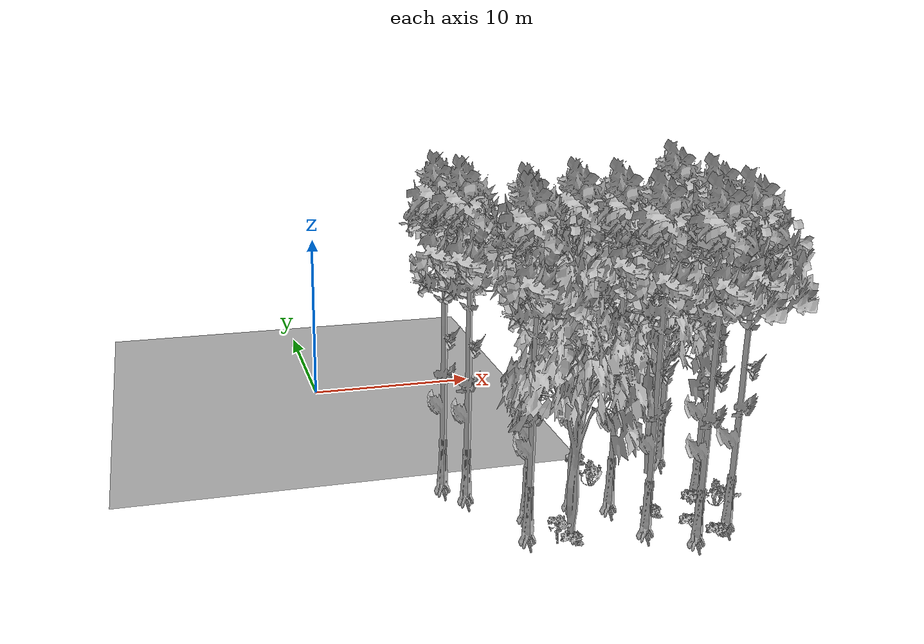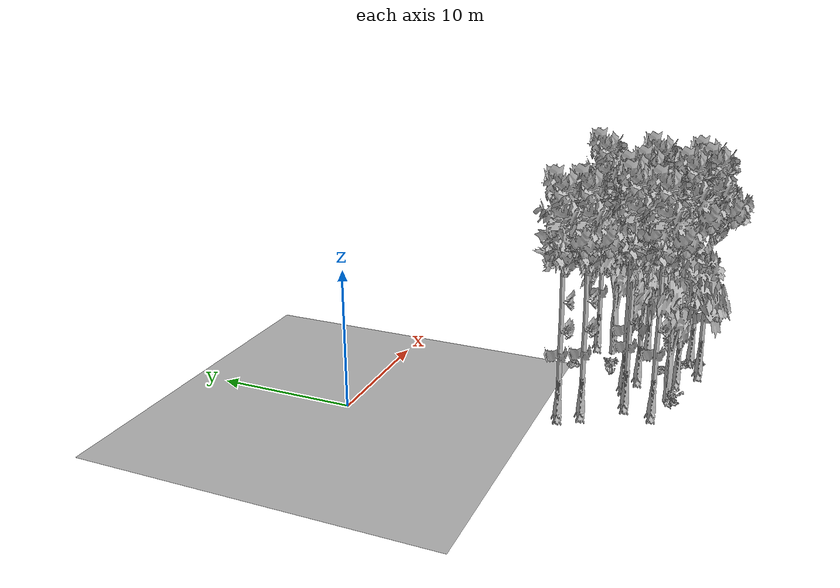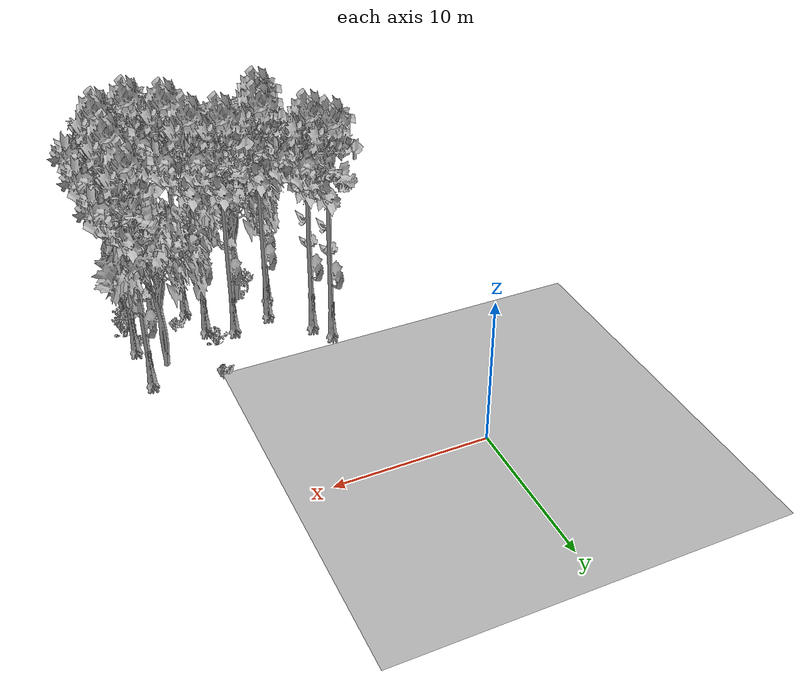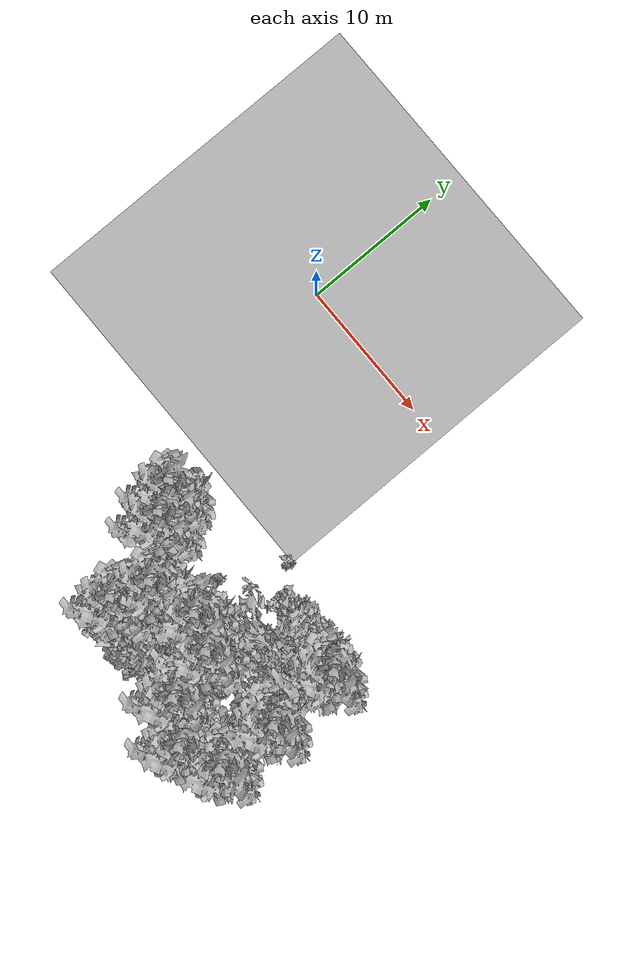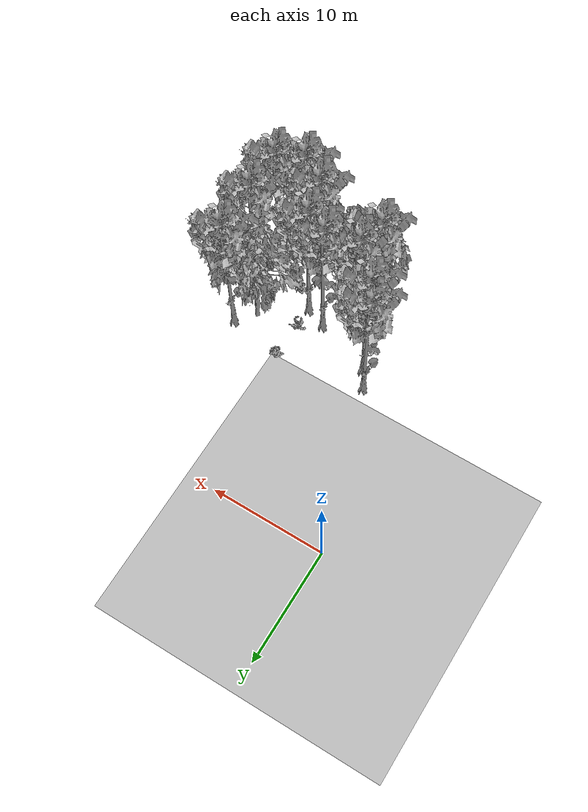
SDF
<sdf version="1.7">
 <world name="default">
  <model name="ground_plane">
   <static>1</static>
   <link name="link">
    <collision name="collision">
     <pose>-50 0 0 0 -0 0</pose>
     <geometry><plane><normal>0 0 1</normal><size>80 80</size></plane></geometry>
     <surface><contact><ode><min_depth>0.01</min_depth><max_vel>0</max_vel></ode></contact></surface>
    </collision>
    <visual name="grass">
     <cast_shadows>0</cast_shadows>
     <geometry>
      <mesh>
       <scale>0.46714285714285714 0.46714285714285714 0.1</scale>
       <uri>file://grass_plane/meshes/grass_plane.dae</uri>
      </mesh>
     </geometry>
    </visual>
   </link>
  </model>
  <model name="Tree 26">
   <static>1</static>
   <pose>12.870327430192127 -20.458326522849546 0 1.57079 -0 0</pose>
   <link name="link">
    <collision name="collision">
     <geometry><mesh><scale>3.5 5 3.5</scale><uri>model://tree_9/meshes/tree_9.obj</uri></mesh></geometry>
    </collision>
    <visual name="visual">
     <geometry><mesh><scale>3.5 5 3.5</scale><uri>model://tree_9/meshes/tree_9.obj</uri></mesh></geometry>
    </visual>
   </link>
  </model>
  <model name="Tree 106">
   <static>1</static>
   <pose>4.481483415462449 -13.785826718643577 0 1.57079 -0 0</pose>
   <link name="link">
    <collision name="collision">
     <geometry><mesh><scale>3.5 5 3.5</scale><uri>model://tree_9/meshes/tree_9.obj</uri></mesh></geometry>
    </collision>
    <visual name="visual">
     <geometry><mesh><scale>3.5 5 3.5</scale><uri>model://tree_9/meshes/tree_9.obj</uri></mesh></geometry>
    </visual>
   </link>
  </model>
  <model name="Tree 238">
   <static>1</static>
   <pose>10.349888529796758 -17.022937210446827 0 1.57079 -0 0</pose>
   <link name="link">
    <collision name="collision">
     <geometry><mesh><scale>3.5 5 3.5</scale><uri>model://tree_9/meshes/tree_9.obj</uri></mesh></geometry>
    </collision>
    <visual name="visual">
     <geometry><mesh><scale>3.5 5 3.5</scale><uri>model://tree_9/meshes/tree_9.obj</uri></mesh></geometry>
    </visual>
   </link>
  </model>
  <model name="Tree 264">
   <static>1</static>
   <pose>16.99689929187906 -20.866348221566486 0 1.57079 -0 0</pose>
   <link name="link">
    <collision name="collision">
     <geometry><mesh><scale>3.5 5 3.5</scale><uri>model://tree_9/meshes/tree_9.obj</uri></mesh></geometry>
    </collision>
    <visual name="visual">
     <geometry><mesh><scale>3.5 5 3.5</scale><uri>model://tree_9/meshes/tree_9.obj</uri></mesh></geometry>
    </visual>
   </link>
  </model>
  <model name="Tree 281">
   <static>1</static>
   <pose>16.982812657844576 -13.582941814654916 0 1.57079 -0 0</pose>
   <link name="link">
    <collision name="collision">
     <geometry><mesh><scale>3.5 5 3.5</scale><uri>model://tree_9/meshes/tree_9.obj</uri></mesh></geometry>
    </collision>
    <visual name="visual">
     <geometry><mesh><scale>3.5 5 3.5</scale><uri>model://tree_9/meshes/tree_9.obj</uri></mesh></geometry>
    </visual>
   </link>
  </model>
  <model name="Tree 367">
   <static>1</static>
   <pose>17.06729657085703 -17.533714002945324 0 1.57079 -0 0</pose>
   <link name="link">
    <collision name="collision">
     <geometry><mesh><scale>3.5 5 3.5</scale><uri>model://tree_9/meshes/tree_9.obj</uri></mesh></geometry>
    </collision>
    <visual name="visual">
     <geometry><mesh><scale>3.5 5 3.5</scale><uri>model://tree_9/meshes/tree_9.obj</uri></mesh></geometry>
    </visual>
   </link>
  </model>
  <model name="Tree 472">
   <static>1</static>
   <pose>14.895173761219333 -21.76493385441063 0 1.57079 -0 0</pose>
   <link name="link">
    <collision name="collision">
     <geometry><mesh><scale>3.5 5 3.5</scale><uri>model://tree_9/meshes/tree_9.obj</uri></mesh></geometry>
    </collision>
    <visual name="visual">
     <geometry><mesh><scale>3.5 5 3.5</scale><uri>model://tree_9/meshes/tree_9.obj</uri></mesh></geometry>
    </visual>
   </link>
  </model>
  <model name="Tree 475">
   <static>1</static>
   <pose>8.930602088919635 -20.378086687121435 0 1.57079 -0 0</pose>
   <link name="link">
    <collision name="collision">
     <geometry><mesh><scale>3.5 5 3.5</scale><uri>model://tree_2/meshes/tree_2.obj</uri></mesh></geometry>
    </collision>
    <visual name="visual">
     <geometry><mesh><scale>3.5 5 3.5</scale><uri>model://tree_2/meshes/tree_2.obj</uri></mesh></geometry>
    </visual>
   </link>
  </model>
  <model name="Tree 487">
   <static>1</static>
   <pose>12.14831017593606 -17.757055664324444 0 1.57079 -0 0</pose>
   <link name="link">
    <collision name="collision">
     <geometry><mesh><scale>3.5 5 3.5</scale><uri>model://tree_9/meshes/tree_9.obj</uri></mesh></geometry>
    </collision>
    <visual name="visual">
     <geometry><mesh><scale>3.5 5 3.5</scale><uri>model://tree_9/meshes/tree_9.obj</uri></mesh></geometry>
    </visual>
   </link>
  </model>
  <model name="Tree 511">
   <static>1</static>
   <pose>15.501435858898112 -15.092829220602901 0 1.57079 -0 0</pose>
   <link name="link">
    <collision name="collision">
     <geometry><mesh><scale>3.5 5 3.5</scale><uri>model://tree_2/meshes/tree_2.obj</uri></mesh></geometry>
    </collision>
    <visual name="visual">
     <geometry><mesh><scale>3.5 5 3.5</scale><uri>model://tree_2/meshes/tree_2.obj</uri></mesh></geometry>
    </visual>
   </link>
  </model>
  <model name="Tree 529">
   <static>1</static>
   <pose>7.695934159477858 -17.722258154893254 0 1.57079 -0 0</pose>
   <link name="link">
    <collision name="collision">
     <geometry><mesh><scale>3.5 5 3.5</scale><uri>model://tree_9/meshes/tree_9.obj</uri></mesh></geometry>
    </collision>
    <visual name="visual">
     <geometry><mesh><scale>3.5 5 3.5</scale><uri>model://tree_9/meshes/tree_9.obj</uri></mesh></geometry>
    </visual>
   </link>
  </model>
  <model name="Tree 571">
   <static>1</static>
   <pose>7.076974832115255 -19.70008430176014 0 1.57079 -0 0</pose>
   <link name="link">
    <collision name="collision">
     <geometry><mesh><scale>3.5 5 3.5</scale><uri>model://tree_9/meshes/tree_9.obj</uri></mesh></geometry>
    </collision>
    <visual name="visual">
     <geometry><mesh><scale>3.5 5 3.5</scale><uri>model://tree_9/meshes/tree_9.obj</uri></mesh></geometry>
    </visual>
   </link>
  </model>
  <model name="Tree 631">
   <static>1</static>
   <pose>5.346191341699424 -15.185315830437112 0 1.57079 -0 0</pose>
   <link name="link">
    <collision name="collision">
     <geometry><mesh><scale>3.5 5 3.5</scale><uri>model://tree_9/meshes/tree_9.obj</uri></mesh></geometry>
    </collision>
    <visual name="visual">
     <geometry><mesh><scale>3.5 5 3.5</scale><uri>model://tree_9/meshes/tree_9.obj</uri></mesh></geometry>
    </visual>
   </link>
  </model>
  <model name="Bush 57">
   <static>1</static>
   <pose>13.759469035885004 -19.18341057311447 0 1.57079 -0 0</pose>
   <link name="link">
    <collision name="collision">
     <geometry><mesh><scale>2 2 2</scale><uri>model://bush_2/meshes/bush_2.obj</uri></mesh></geometry>
     <surface><contact><collide_without_contact>false</collide_without_contact></contact></surface>
    </collision>
    <visual name="visual">
     <geometry><mesh><scale>2 2 2</scale><uri>model://bush_2/meshes/bush_2.obj</uri></mesh></geometry>
    </visual>
   </link>
  </model>
  <model name="Bush 99">
   <static>1</static>
   <pose>17.44366538711982 -19.926202725615116 0 1.57079 -0 0</pose>
   <link name="link">
    <collision name="collision">
     <geometry><mesh><scale>2 2 2</scale><uri>model://bush_5/meshes/bush_5.obj</uri></mesh></geometry>
     <surface><contact><collide_without_contact>false</collide_without_contact></contact></surface>
    </collision>
    <visual name="visual">
     <geometry><mesh><scale>2 2 2</scale><uri>model://bush_5/meshes/bush_5.obj</uri></mesh></geometry>
    </visual>
   </link>
  </model>
  <model name="Bush 121">
   <static>1</static>
   <pose>12.32815981504757 -12.864030561694861 0 1.57079 -0 0</pose>
   <link name="link">
    <collision name="collision">
     <geometry><mesh><scale>2 2 2</scale><uri>model://bush_2/meshes/bush_2.obj</uri></mesh></geometry>
     <surface><contact><collide_without_contact>false</collide_without_contact></contact></surface>
    </collision>
    <visual name="visual">
     <geometry><mesh><scale>2 2 2</scale><uri>model://bush_2/meshes/bush_2.obj</uri></mesh></geometry>
    </visual>
   </link>
  </model>
  <model name="Bush 217">
   <static>1</static>
   <pose>8.169904749431467 -20.831594050880938 0 1.57079 -0 0</pose>
   <link name="link">
    <collision name="collision">
     <geometry><mesh><scale>2 2 2</scale><uri>model://bush_5/meshes/bush_5.obj</uri></mesh></geometry>
     <surface><contact><collide_without_contact>false</collide_without_contact></contact></surface>
    </collision>
    <visual name="visual">
     <geometry><mesh><scale>2 2 2</scale><uri>model://bush_5/meshes/bush_5.obj</uri></mesh></geometry>
    </visual>
   </link>
  </model>
  <model name="Bush 259">
   <static>1</static>
   <pose>17.338995993186565 -19.22373213375197 0 1.57079 -0 0</pose>
   <link name="link">
    <collision name="collision">
     <geometry><mesh><scale>2 2 2</scale><uri>model://bush_4/meshes/bush_4.obj</uri></mesh></geometry>
     <surface><contact><collide_without_contact>false</collide_without_contact></contact></surface>
    </collision>
    <visual name="visual">
     <geometry><mesh><scale>2 2 2</scale><uri>model://bush_4/meshes/bush_4.obj</uri></mesh></geometry>
    </visual>
   </link>
  </model>
  <model name="Bush 366">
   <static>1</static>
   <pose>8.918471843469405 -20.745987614840775 0 1.57079 -0 0</pose>
   <link name="link">
    <collision name="collision">
     <geometry><mesh><scale>2 2 2</scale><uri>model://bush_2/meshes/bush_2.obj</uri></mesh></geometry>
     <surface><contact><collide_without_contact>false</collide_without_contact></contact></surface>
    </collision>
    <visual name="visual">
     <geometry><mesh><scale>2 2 2</scale><uri>model://bush_2/meshes/bush_2.obj</uri></mesh></geometry>
    </visual>
   </link>
  </model>
  <model name="Bush 458">
   <static>1</static>
   <pose>11.97904677827799 -15.771276552807318 0 1.57079 -0 0</pose>
   <link name="link">
    <collision name="collision">
     <geometry><mesh><scale>2 2 2</scale><uri>model://bush_4/meshes/bush_4.obj</uri></mesh></geometry>
     <surface><contact><collide_without_contact>false</collide_without_contact></contact></surface>
    </collision>
    <visual name="visual">
     <geometry><mesh><scale>2 2 2</scale><uri>model://bush_4/meshes/bush_4.obj</uri></mesh></geometry>
    </visual>
   </link>
  </model>
  <model name="Bush 491">
   <static>1</static>
   <pose>16.508286454713208 -18.241773526091905 0 1.57079 -0 0</pose>
   <link name="link">
    <collision name="collision">
     <geometry><mesh><scale>2 2 2</scale><uri>model://bush_2/meshes/bush_2.obj</uri></mesh></geometry>
     <surface><contact><collide_without_contact>false</collide_without_contact></contact></surface>
    </collision>
    <visual name="visual">
     <geometry><mesh><scale>2 2 2</scale><uri>model://bush_2/meshes/bush_2.obj</uri></mesh></geometry>
    </visual>
   </link>
  </model>
  <model name="Bush 562">
   <static>1</static>
   <pose>15.222395046792975 -20.490414081722122 0 1.57079 -0 0</pose>
   <link name="link">
    <collision name="collision">
     <geometry><mesh><scale>2 2 2</scale><uri>model://bush_2/meshes/bush_2.obj</uri></mesh></geometry>
     <surface><contact><collide_without_contact>false</collide_without_contact></contact></surface>
    </collision>
    <visual name="visual">
     <geometry><mesh><scale>2 2 2</scale><uri>model://bush_2/meshes/bush_2.obj</uri></mesh></geometry>
    </visual>
   </link>
  </model>
  <model name="Bush 627">
   <static>1</static>
   <pose>16.062070368497125 -21.58062490391872 0 1.57079 -0 0</pose>
   <link name="link">
    <collision name="collision">
     <geometry><mesh><scale>2 2 2</scale><uri>model://bush_2/meshes/bush_2.obj</uri></mesh></geometry>
     <surface><contact><collide_without_contact>false</collide_without_contact></contact></surface>
    </collision>
    <visual name="visual">
     <geometry><mesh><scale>2 2 2</scale><uri>model://bush_2/meshes/bush_2.obj</uri></mesh></geometry>
    </visual>
   </link>
  </model>
 </world>
</sdf>
